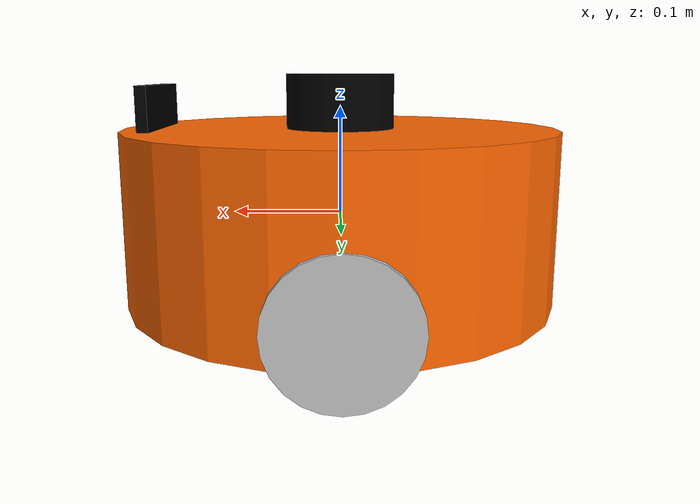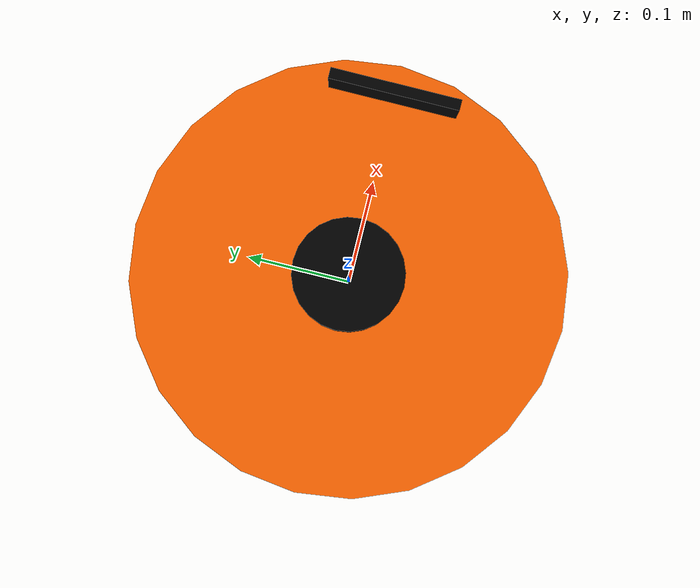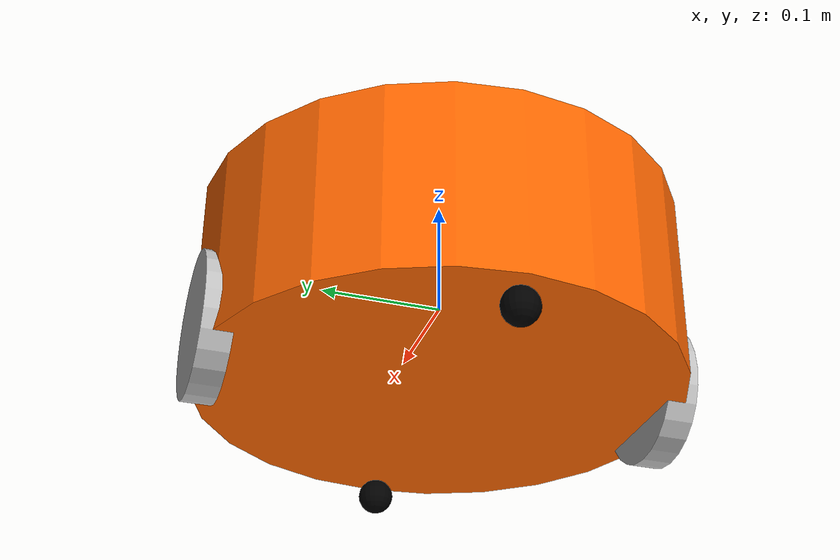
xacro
<?xml version="1.0"?>
<robot name="mbot" xmlns:xacro="http://www.ros.org/wiki/xacro">

    <xacro:include filename="$(find mbot_sim)/urdf/xacro/mbot_base_rviz.xacro" />
    <xacro:include filename="$(find mbot_sim)/urdf/xacro/mbot_camera_rviz.xacro" />
    <xacro:include filename="$(find mbot_sim)/urdf/xacro/mbot_lidar_rviz.xacro" />

    <xacro:property name="camera_offset_x" value="0.17" />
    <xacro:property name="camera_offset_y" value="0" />
    <xacro:property name="camera_offset_z" value="0.10" />

    <xacro:property name="lidar_offset_x" value="0" />
    <xacro:property name="lidar_offset_y" value="0" />
    <xacro:property name="lidar_offset_z" value="0.105" />

    <mbot_base />

   <!--camera-->
    <joint name="camera_joint" type="fixed">
        <origin xyz="${camera_offset_x} ${camera_offset_y} ${camera_offset_z}" rpy="0 0 0" />
        <parent link="base_link"/>
        <child link="camera_link"/>
    </joint>

    <!-- lidar -->
    <joint name="lidar_joint" type="fixed">
        <origin xyz="${lidar_offset_x} ${lidar_offset_y} ${lidar_offset_z}" rpy="0 0 0" />
        <parent link="base_link"/>
        <child link="laser_link"/>
    </joint>

    <xacro:usb_camera prefix="camera"/>
    <xacro:rplidar prefix="laser"/>

</robot>

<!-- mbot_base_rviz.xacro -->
<robot name="mbot" xmlns:xacro="http://www.ros.org/wiki/xacro">

    <!-- PROPERTY LIST -->
    <xacro:property name="M_PI" value="3.1415926"/>

    <xacro:property name="base_radius" value="0.20"/>
    <xacro:property name="base_length" value="0.16"/>

    <xacro:property name="wheel_radius" value="0.06"/>
    <xacro:property name="wheel_length" value="0.025"/>

    <xacro:property name="wheel_joint_y" value="0.19"/>
    <xacro:property name="wheel_joint_z" value="0.05"/>
    <xacro:property name="caster_radius" value="0.015"/>

    <!-- wheel_radius - ( base_length/2 - wheel_joint_z) -->
    <xacro:property name="caster_joint_x" value="0.18"/>

<!-- Defining the colors used in this robot -->
    <material name="yellow">
        <color rgba="1 0.4 0 1"/>
    </material>
    <material name="black">
        <color rgba="0 0 0 0.95"/>
    </material>
    <material name="gray">
        <color rgba="0.75 0.75 0.75 1"/>
    </material>

<xacro:macro name="wheel" params="prefix reflect">
<joint name="${prefix}_wheel_joint " type="continuous">
    <origin xyz="0 ${reflect*wheel_joint_y} ${-wheel_joint_z}" rpy="0 0 0"/>
    <parent link="base_link"/>
    <child link="${prefix}_wheel_link"/>
    <axis xyz="0 1 0"/>
</joint>
<link name="${prefix}_wheel_link">
            <visual>
                <origin xyz="0 0 0" rpy="${M_PI/2} 0 0" />
                <geometry>
                    <cylinder radius="${wheel_radius}" length = "${wheel_length}"/>
                </geometry>
                <material name="gray" />
            </visual>
</link>
</xacro:macro>

    <xacro:macro name="caster" params="prefix reflect">
        <joint name="${prefix}_caster_joint" type="continuous">
            <origin xyz="${reflect*caster_joint_x} 0 ${-(base_length/2 + caster_radius)}" rpy="0 0 0"/>
            <parent link="base_link"/>
            <child link="${prefix}_caster_link"/>
            <axis xyz="0 1 0"/>
        </joint>

        <link name="${prefix}_caster_link">
            <visual>
                <origin xyz="0 0 0" rpy="0 0 0"/>
                <geometry>
                    <sphere radius="${caster_radius}" />
                </geometry>
                <material name="black" />
            </visual>
        </link>
    </xacro:macro>

   <xacro:macro name="mbot_base">

        <link name="base_link">
            <visual>
                <origin xyz=" 0 0 0" rpy="0 0 0" />
                <geometry>
                    <cylinder length="${base_length}" radius="${base_radius}"/>
                </geometry>
                <material name="yellow" />
            </visual>
        </link>

        <wheel prefix="left" reflect="-1"/>
        <wheel prefix="right" reflect="1"/>

        <caster prefix="front" reflect="-1"/>
        <caster prefix="back" reflect="1"/>
    </xacro:macro>
</robot>

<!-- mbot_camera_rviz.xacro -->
<robot xmlns:xacro="http://www.ros.org/wiki/xacro" name="camera">
    <xacro:macro name="usb_camera" params="prefix:=camera">
        <link name="${prefix}_link">
            <visual>
                <origin xyz=" 0 0 0 " rpy="0 0 0" />
                <geometry>
                    <box size="0.01 0.12 0.04" />
                </geometry>
                <material name="black"/>
            </visual>
        </link>
    </xacro:macro>

</robot>

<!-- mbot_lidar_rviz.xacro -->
<robot xmlns:xacro="http://www.ros.org/wiki/xacro" name="laser">
	<xacro:macro name="rplidar" params="prefix:=laser">
        <link name="${prefix}_link">
            <visual>
                <origin xyz=" 0 0 0 " rpy="0 0 0" />
                <geometry>
                    <cylinder length="0.05" radius="0.05"/>
                </geometry>
                <material name="black"/>
            </visual>
        </link>
    </xacro:macro>

</robot>
